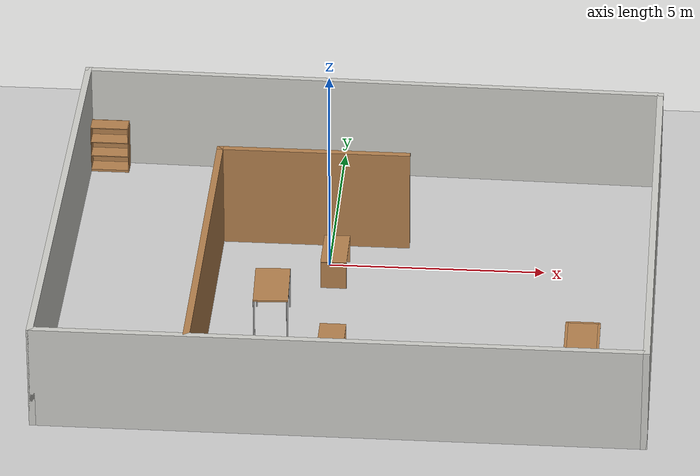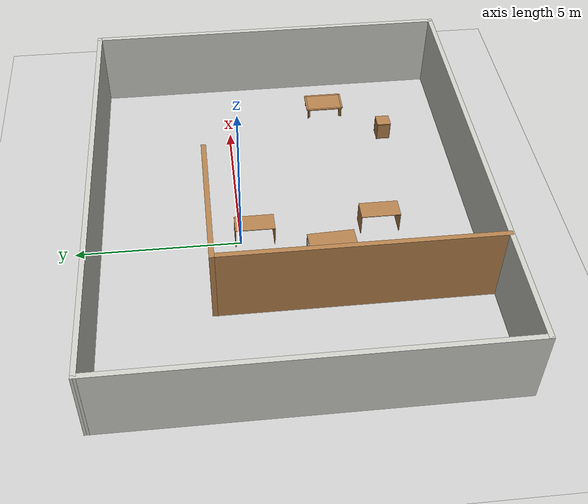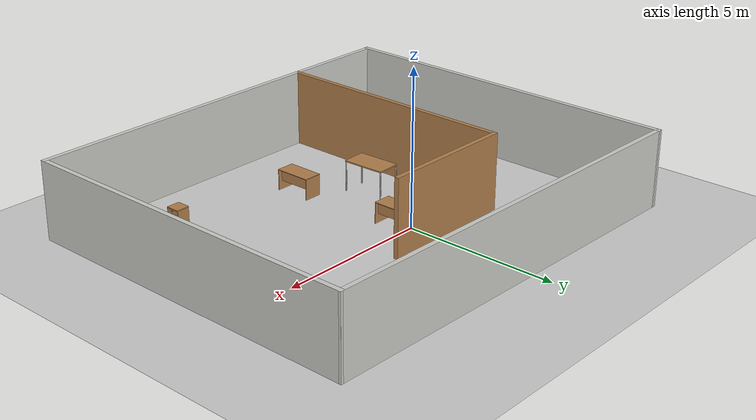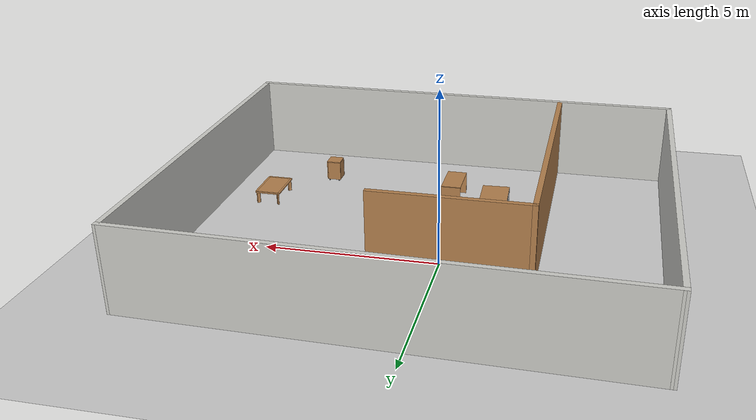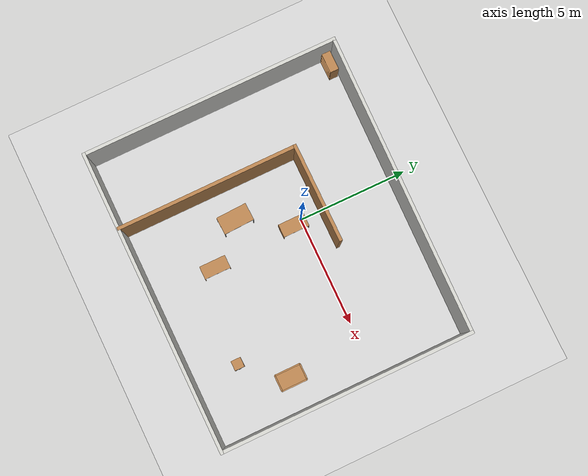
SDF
<sdf version="1.7">
 <world name="default">
  <light name="sun" type="directional">
   <pose>0 0 10 0 -0 0</pose>
   <diffuse>0.8 0.8 0.8 1</diffuse>
   <specular>0.1 0.1 0.1 1</specular>
   <attenuation>
    <range>1000</range>
    <constant>0.9</constant>
    <linear>0.01</linear>
    <quadratic>0.001</quadratic>
   </attenuation>
   <direction>-0.5 0.5 -1</direction>
   <spot><inner_angle>0</inner_angle><outer_angle>0</outer_angle><falloff>0</falloff></spot>
  </light>
  <model name="ground_plane">
   <static>1</static>
   <link name="link">
    <collision name="collision">
     <geometry><plane><normal>0 0 1</normal><size>100 100</size></plane></geometry>
     <surface><friction><ode><mu>100</mu><mu2>50</mu2></ode></friction></surface>
    </collision>
    <visual name="visual">
     <cast_shadows>0</cast_shadows>
     <geometry><plane><normal>0 0 1</normal><size>100 100</size></plane></geometry>
     <material>
      <script><uri>file://media/materials/scripts/gazebo.material</uri><name>Gazebo/Grey</name></script>
     </material>
    </visual>
   </link>
  </model>
  <gravity>0 0 -9.8</gravity>
  <magnetic_field>6e-06 2.3e-05 -4.2e-05</magnetic_field>
  <atmosphere type="adiabatic"/>
  <physics name="default_physics" default="0" type="ode">
   <max_step_size>0.001</max_step_size>
   <real_time_factor>1</real_time_factor>
   <real_time_update_rate>1000</real_time_update_rate>
  </physics>
  <scene><ambient>0.4 0.4 0.4 1</ambient><background>0.7 0.7 0.7 1</background><shadows>1</shadows></scene>
  <spherical_coordinates>
   <surface_model>EARTH_WGS84</surface_model>
   <latitude_deg>0</latitude_deg>
   <longitude_deg>0</longitude_deg>
   <elevation>0</elevation>
   <heading_deg>0</heading_deg>
  </spherical_coordinates>
  <model name="bookshelf">
   <static>1</static>
   <link name="link">
    <inertial><mass>1</mass></inertial>
    <collision name="back">
     <pose>0 0.005 0.6 0 -0 0</pose>
     <geometry><box><size>0.9 0.01 1.2</size></box></geometry>
    </collision>
    <visual name="visual1">
     <pose>0 0.005 0.6 0 -0 0</pose>
     <geometry><box><size>0.9 0.01 1.2</size></box></geometry>
     <material>
      <script><uri>file://media/materials/scripts/gazebo.material</uri><name>Gazebo/Wood</name></script>
     </material>
    </visual>
    <collision name="left_side">
     <pose>0.45 -0.195 0.6 0 -0 0</pose>
     <geometry><box><size>0.02 0.4 1.2</size></box></geometry>
    </collision>
    <visual name="visual2">
     <pose>0.45 -0.195 0.6 0 -0 0</pose>
     <geometry><box><size>0.02 0.4 1.2</size></box></geometry>
     <material>
      <script><uri>file://media/materials/scripts/gazebo.material</uri><name>Gazebo/Wood</name></script>
     </material>
    </visual>
    <collision name="right_side">
     <pose>-0.45 -0.195 0.6 0 -0 0</pose>
     <geometry><box><size>0.02 0.4 1.2</size></box></geometry>
    </collision>
    <visual name="visual3">
     <pose>-0.45 -0.195 0.6 0 -0 0</pose>
     <geometry><box><size>0.02 0.4 1.2</size></box></geometry>
     <material>
      <script><uri>file://media/materials/scripts/gazebo.material</uri><name>Gazebo/Wood</name></script>
     </material>
    </visual>
    <collision name="bottom">
     <pose>0 -0.195 0.03 0 -0 0</pose>
     <geometry><box><size>0.88 0.4 0.06</size></box></geometry>
    </collision>
    <visual name="visual4">
     <pose>0 -0.195 0.03 0 -0 0</pose>
     <geometry><box><size>0.88 0.4 0.06</size></box></geometry>
     <material>
      <script><uri>file://media/materials/scripts/gazebo.material</uri><name>Gazebo/Wood</name></script>
     </material>
    </visual>
    <collision name="top">
     <pose>0 -0.195 1.19 0 -0 0</pose>
     <geometry><box><size>0.88 0.4 0.02</size></box></geometry>
    </collision>
    <visual name="visual5">
     <pose>0 -0.195 1.19 0 -0 0</pose>
     <geometry><box><size>0.88 0.4 0.02</size></box></geometry>
     <material>
      <script><uri>file://media/materials/scripts/gazebo.material</uri><name>Gazebo/Wood</name></script>
     </material>
    </visual>
    <collision name="low_shelf">
     <pose>0 -0.195 0.43 0 -0 0</pose>
     <geometry><box><size>0.88 0.4 0.02</size></box></geometry>
    </collision>
    <visual name="visual6">
     <pose>0 -0.195 0.43 0 -0 0</pose>
     <geometry><box><size>0.88 0.4 0.02</size></box></geometry>
     <material>
      <script><uri>file://media/materials/scripts/gazebo.material</uri><name>Gazebo/Wood</name></script>
     </material>
    </visual>
    <collision name="high_shelf">
     <pose>0 -0.195 0.8 0 -0 0</pose>
     <geometry><box><size>0.88 0.4 0.02</size></box></geometry>
    </collision>
    <visual name="visual7">
     <pose>0 -0.195 0.8 0 -0 0</pose>
     <geometry><box><size>0.88 0.4 0.02</size></box></geometry>
     <material>
      <script><uri>file://media/materials/scripts/gazebo.material</uri><name>Gazebo/Wood</name></script>
     </material>
    </visual>
   </link>
   <pose>-5.57633 4.24678 0 0 -0 0</pose>
  </model>
  <model name="table">
   <static>0</static>
   <link name="link">
    <collision name="surface">
     <pose>0 0 1 0 -0 0</pose>
     <geometry><box><size>1.5 0.8 0.03</size></box></geometry>
     <surface><friction><ode><mu>0.6</mu><mu2>0.6</mu2></ode></friction></surface>
    </collision>
    <visual name="visual1">
     <pose>0 0 1 0 -0 0</pose>
     <geometry><box><size>1.4 0.8 0.04</size></box></geometry>
     <material>
      <script><uri>file://media/materials/scripts/gazebo.material</uri><name>Gazebo/Wood</name></script>
     </material>
    </visual>
    <collision name="front_left_leg">
     <pose>0.68 0.38 0.5 0 -0 0</pose>
     <geometry><cylinder><radius>0.02</radius><length>1</length></cylinder></geometry>
    </collision>
    <visual name="front_left_leg">
     <pose>0.68 0.38 0.5 0 -0 0</pose>
     <geometry><cylinder><radius>0.02</radius><length>1</length></cylinder></geometry>
     <material>
      <script><uri>file://media/materials/scripts/gazebo.material</uri><name>Gazebo/Grey</name></script>
     </material>
    </visual>
    <collision name="front_right_leg">
     <pose>0.68 -0.38 0.5 0 -0 0</pose>
     <geometry><cylinder><radius>0.02</radius><length>1</length></cylinder></geometry>
    </collision>
    <visual name="front_right_leg">
     <pose>0.68 -0.38 0.5 0 -0 0</pose>
     <geometry><cylinder><radius>0.02</radius><length>1</length></cylinder></geometry>
     <material>
      <script><uri>file://media/materials/scripts/gazebo.material</uri><name>Gazebo/Grey</name></script>
     </material>
    </visual>
    <collision name="back_right_leg">
     <pose>-0.68 -0.38 0.5 0 -0 0</pose>
     <geometry><cylinder><radius>0.02</radius><length>1</length></cylinder></geometry>
    </collision>
    <visual name="back_right_leg">
     <pose>-0.68 -0.38 0.5 0 -0 0</pose>
     <geometry><cylinder><radius>0.02</radius><length>1</length></cylinder></geometry>
     <material>
      <script><uri>file://media/materials/scripts/gazebo.material</uri><name>Gazebo/Grey</name></script>
     </material>
    </visual>
    <collision name="back_left_leg">
     <pose>-0.68 0.38 0.5 0 -0 0</pose>
     <geometry><cylinder><radius>0.02</radius><length>1</length></cylinder></geometry>
    </collision>
    <visual name="back_left_leg">
     <pose>-0.68 0.38 0.5 0 -0 0</pose>
     <geometry><cylinder><radius>0.02</radius><length>1</length></cylinder></geometry>
     <material>
      <script><uri>file://media/materials/scripts/gazebo.material</uri><name>Gazebo/Grey</name></script>
     </material>
    </visual>
    <inertial>
     <inertia><ixx>1</ixx><ixy>0</ixy><ixz>0</ixz><iyy>1</iyy><iyz>0</iyz><izz>1</izz></inertia>
     <mass>1</mass>
    </inertial>
   </link>
   <pose>-1.1349 -2.59455 -0 0 -0 1.61244</pose>
  </model>
  <model name="office_desk">
   <link name="link">
    <inertial>
     <mass>10</mass>
     <inertia><ixx>1</ixx><ixy>0</ixy><ixz>0</ixz><iyy>1</iyy><iyz>0</iyz><izz>1</izz></inertia>
    </inertial>
    <visual name="top_board">
     <pose>-0.3 0.6 0.69 0 -0 0</pose>
     <geometry><box><size>0.6 1.2 0.02</size></box></geometry>
     <material>
      <script>
       <uri>model://base_materials/wood/scripts/wood.material</uri>
       <name>base_materials/dark_wood</name>
      </script>
     </material>
    </visual>
    <collision name="collision_top_board">
     <pose>-0.3 0.6 0.69 0 -0 0</pose>
     <geometry><box><size>0.6 1.2 0.02</size></box></geometry>
    </collision>
    <visual name="left_board">
     <pose>-0.3 0.01 0.34 0 -0 0</pose>
     <geometry><box><size>0.6 0.02 0.68</size></box></geometry>
     <material>
      <script>
       <uri>model://base_materials/wood/scripts/wood.material</uri>
       <name>base_materials/dark_wood</name>
      </script>
     </material>
    </visual>
    <collision name="collision_left_board">
     <pose>-0.3 0.01 0.34 0 -0 0</pose>
     <geometry><box><size>0.6 0.02 0.68</size></box></geometry>
    </collision>
    <visual name="right_board">
     <pose>-0.3 1.19 0.34 0 -0 0</pose>
     <geometry><box><size>0.6 0.02 0.68</size></box></geometry>
     <material>
      <script>
       <uri>model://base_materials/wood/scripts/wood.material</uri>
       <name>base_materials/dark_wood</name>
      </script>
     </material>
    </visual>
    <collision name="collision_right_board">
     <pose>-0.3 1.19 0.34 0 -0 0</pose>
     <geometry><box><size>0.6 0.02 0.68</size></box></geometry>
    </collision>
    <visual name="center_board">
     <pose>-0.14 0.6 0.49 0 -0 0</pose>
     <geometry><box><size>0.02 1.16 0.4</size></box></geometry>
     <material>
      <script>
       <uri>model://base_materials/wood/scripts/wood.material</uri>
       <name>base_materials/dark_wood</name>
      </script>
     </material>
    </visual>
    <collision name="ollision_center_board">
     <pose>-0.14 0.6 0.49 0 -0 0</pose>
     <geometry><box><size>0.02 1.16 0.4</size></box></geometry>
    </collision>
    <velocity_decay><linear>0</linear><angular>0</angular></velocity_decay>
   </link>
   <static>1</static>
   <pose>0.456542 -1.02041 0 0 -0 0</pose>
  </model>
  <model name="WallTotal">
   <pose>0.707911 2.07313 0 0 -0 0</pose>
   <link name="Wall_33">
    <collision name="Wall_33_Collision">
     <geometry><box><size>11.75 0.15 2.5</size></box></geometry>
     <pose>0 0 1.25 0 -0 0</pose>
    </collision>
    <visual name="Wall_33_Visual">
     <pose>0 0 1.25 0 -0 0</pose>
     <geometry><box><size>11.75 0.15 2.5</size></box></geometry>
     <material>
      <script><uri>file://media/materials/scripts/gazebo.material</uri><name>Gazebo/CeilingTiled</name></script>
      <ambient>1 1 1 1</ambient>
     </material>
     <meta><layer>0</layer></meta>
    </visual>
    <pose>-6.8 -3.46494 0 0 -0 -1.5708</pose>
   </link>
   <link name="Wall_34">
    <collision name="Wall_34_Collision">
     <geometry><box><size>13.75 0.15 2.5</size></box></geometry>
     <pose>0 0 1.25 0 -0 0</pose>
    </collision>
    <visual name="Wall_34_Visual">
     <pose>0 0 1.25 0 -0 0</pose>
     <geometry><box><size>13.75 0.15 2.5</size></box></geometry>
     <material>
      <script><uri>file://media/materials/scripts/gazebo.material</uri><name>Gazebo/CeilingTiled</name></script>
      <ambient>1 1 1 1</ambient>
     </material>
     <meta><layer>0</layer></meta>
    </visual>
    <pose>0 -9.26494 0 0 -0 0</pose>
   </link>
   <link name="Wall_35">
    <collision name="Wall_35_Collision">
     <geometry><box><size>11.5 0.15 2.5</size></box></geometry>
     <pose>0 0 1.25 0 -0 0</pose>
    </collision>
    <visual name="Wall_35_Visual">
     <pose>0 0 1.25 0 -0 0</pose>
     <geometry><box><size>11.5 0.15 2.5</size></box></geometry>
     <material>
      <script><uri>file://media/materials/scripts/gazebo.material</uri><name>Gazebo/CeilingTiled</name></script>
      <ambient>1 1 1 1</ambient>
     </material>
     <meta><layer>0</layer></meta>
    </visual>
    <pose>6.8 -3.58994 0 0 -0 1.5708</pose>
   </link>
   <link name="Wall_36">
    <collision name="Wall_36_Collision">
     <geometry><box><size>13.7523 0.15 2.5</size></box></geometry>
     <pose>0 0 1.25 0 -0 0</pose>
    </collision>
    <visual name="Wall_36_Visual">
     <pose>0 0 1.25 0 -0 0</pose>
     <geometry><box><size>13.7523 0.15 2.5</size></box></geometry>
     <material>
      <script><uri>file://media/materials/scripts/gazebo.material</uri><name>Gazebo/CeilingTiled</name></script>
      <ambient>1 1 1 1</ambient>
     </material>
     <meta><layer>0</layer></meta>
    </visual>
    <pose>0 2.21006 0 0 -0 3.12321</pose>
   </link>
   <link name="Wall_38">
    <collision name="Wall_38_Collision">
     <geometry><box><size>8.25 0.15 2.5</size></box></geometry>
     <pose>0 0 1.25 0 -0 0</pose>
    </collision>
    <visual name="Wall_38_Visual">
     <pose>0 0 1.25 0 -0 0</pose>
     <geometry><box><size>8.25 0.15 2.5</size></box></geometry>
     <material>
      <script><uri>file://media/materials/scripts/gazebo.material</uri><name>Gazebo/Wood</name></script>
      <ambient>1 1 1 1</ambient>
     </material>
     <meta><layer>0</layer></meta>
    </visual>
    <pose>-3.33487 -5.18006 0 0 -0 -1.5708</pose>
   </link>
   <link name="Wall_40">
    <collision name="Wall_40_Collision">
     <geometry><box><size>4.5 0.15 2.5</size></box></geometry>
     <pose>0 0 1.25 0 -0 0</pose>
    </collision>
    <visual name="Wall_40_Visual">
     <pose>0 0 1.25 0 -0 0</pose>
     <geometry><box><size>4.5 0.15 2.5</size></box></geometry>
     <material>
      <script><uri>file://media/materials/scripts/gazebo.material</uri><name>Gazebo/Wood</name></script>
      <ambient>1 1 1 1</ambient>
     </material>
     <meta><layer>0</layer></meta>
    </visual>
    <pose>-1.15987 -1.13006 0 0 -0 0</pose>
   </link>
   <static>1</static>
  </model>
  <model name="office_desk_clone">
   <link name="link">
    <inertial>
     <mass>10</mass>
     <inertia><ixx>1</ixx><ixy>0</ixy><ixz>0</ixz><iyy>1</iyy><iyz>0</iyz><izz>1</izz></inertia>
    </inertial>
    <visual name="top_board">
     <pose>-0.3 0.6 0.69 0 -0 0</pose>
     <geometry><box><size>0.6 1.2 0.02</size></box></geometry>
     <material>
      <script>
       <uri>model://base_materials/wood/scripts/wood.material</uri>
       <name>base_materials/dark_wood</name>
      </script>
     </material>
    </visual>
    <collision name="collision_top_board">
     <pose>-0.3 0.6 0.69 0 -0 0</pose>
     <geometry><box><size>0.6 1.2 0.02</size></box></geometry>
    </collision>
    <visual name="left_board">
     <pose>-0.3 0.01 0.34 0 -0 0</pose>
     <geometry><box><size>0.6 0.02 0.68</size></box></geometry>
     <material>
      <script>
       <uri>model://base_materials/wood/scripts/wood.material</uri>
       <name>base_materials/dark_wood</name>
      </script>
     </material>
    </visual>
    <collision name="collision_left_board">
     <pose>-0.3 0.01 0.34 0 -0 0</pose>
     <geometry><box><size>0.6 0.02 0.68</size></box></geometry>
    </collision>
    <visual name="right_board">
     <pose>-0.3 1.19 0.34 0 -0 0</pose>
     <geometry><box><size>0.6 0.02 0.68</size></box></geometry>
     <material>
      <script>
       <uri>model://base_materials/wood/scripts/wood.material</uri>
       <name>base_materials/dark_wood</name>
      </script>
     </material>
    </visual>
    <collision name="collision_right_board">
     <pose>-0.3 1.19 0.34 0 -0 0</pose>
     <geometry><box><size>0.6 0.02 0.68</size></box></geometry>
    </collision>
    <visual name="center_board">
     <pose>-0.14 0.6 0.49 0 -0 0</pose>
     <geometry><box><size>0.02 1.16 0.4</size></box></geometry>
     <material>
      <script>
       <uri>model://base_materials/wood/scripts/wood.material</uri>
       <name>base_materials/dark_wood</name>
      </script>
     </material>
    </visual>
    <collision name="ollision_center_board">
     <pose>-0.14 0.6 0.49 0 -0 0</pose>
     <geometry><box><size>0.02 1.16 0.4</size></box></geometry>
    </collision>
    <velocity_decay><linear>0</linear><angular>0</angular></velocity_decay>
   </link>
   <static>1</static>
   <pose>0.649163 -4.86247 0 0 -0 0</pose>
  </model>
  <model name="wagon">
   <link name="link">
    <inertial>
     <mass>10</mass>
     <inertia><ixx>1</ixx><ixy>0</ixy><ixz>0</ixz><iyy>1</iyy><iyz>0</iyz><izz>1</izz></inertia>
    </inertial>
    <visual name="left_board">
     <pose>-0.2325 0.01 0.345 0 -0 0</pose>
     <geometry><box><size>0.415 0.02 0.59</size></box></geometry>
     <material>
      <script><uri>model://base_materials/wood/scripts/wood.material</uri><name>base_materials/wood</name></script>
     </material>
    </visual>
    <collision name="collision_left_board">
     <pose>-0.2325 0.01 0.345 0 -0 0</pose>
     <geometry><box><size>0.415 0.02 0.59</size></box></geometry>
    </collision>
    <visual name="right_board">
     <pose>-0.2325 0.4325 0.345 0 -0 0</pose>
     <geometry><box><size>0.415 0.02 0.59</size></box></geometry>
     <material>
      <script><uri>model://base_materials/wood/scripts/wood.material</uri><name>base_materials/wood</name></script>
     </material>
    </visual>
    <collision name="collision_right_board">
     <pose>-0.2325 0.4325 0.345 0 -0 0</pose>
     <geometry><box><size>0.415 0.02 0.59</size></box></geometry>
    </collision>
    <visual name="top_board">
     <pose>-0.22 0.2225 0.655 0 -0 0</pose>
     <geometry><box><size>0.44 0.445 0.03</size></box></geometry>
     <material>
      <script><uri>model://base_materials/wood/scripts/wood.material</uri><name>base_materials/wood</name></script>
     </material>
    </visual>
    <collision name="collision_top_board">
     <pose>-0.22 0.2225 0.655 0 -0 0</pose>
     <geometry><box><size>0.44 0.445 0.03</size></box></geometry>
    </collision>
    <visual name="back_board">
     <pose>-0.425 0.2225 0.345 0 -0 0</pose>
     <geometry><box><size>0.02 0.405 0.59</size></box></geometry>
     <material>
      <script><uri>model://base_materials/wood/scripts/wood.material</uri><name>base_materials/wood</name></script>
     </material>
    </visual>
    <collision name="collision_back_board">
     <pose>-0.425 0.2225 0.345 0 -0 0</pose>
     <geometry><box><size>0.02 0.405 0.59</size></box></geometry>
    </collision>
    <visual name="bottom_board">
     <pose>-0.2325 0.2225 0.06 0 -0 0</pose>
     <geometry><box><size>0.415 0.405 0.02</size></box></geometry>
     <material>
      <script><uri>model://base_materials/wood/scripts/wood.material</uri><name>base_materials/wood</name></script>
     </material>
    </visual>
    <collision name="collision_bottom_board">
     <pose>-0.2325 0.2225 0.06 0 -0 0</pose>
     <geometry><box><size>0.415 0.405 0.02</size></box></geometry>
    </collision>
    <visual name="1st_drawer">
     <pose>-0.0125 0.2225 0.57 0 -0 0</pose>
     <geometry><box><size>0.025 0.445 0.14</size></box></geometry>
     <material>
      <script><uri>model://base_materials/wood/scripts/wood.material</uri><name>base_materials/wood</name></script>
     </material>
    </visual>
    <collision name="collision_1st_drawer">
     <pose>-0.0125 0.2225 0.57 0 -0 0</pose>
     <geometry><box><size>0.025 0.445 0.14</size></box></geometry>
    </collision>
    <visual name="1st_drawer_handle_l1">
     <pose>0.0115 0.1895 0.6 3.14159 1.57079 3.14159</pose>
     <geometry><cylinder><radius>0.007</radius><length>0.023</length></cylinder></geometry>
     <material>
      <ambient>0.18431 0.3098 0.3098 1</ambient>
      <diffuse>0.18431 0.3098 0.3098 1</diffuse>
      <specular>0.1 0.1 0.1 1</specular>
     </material>
    </visual>
    <collision name="collision_1st_drawer_handle_l1">
     <pose>0.0115 0.1895 0.6 3.14159 1.57079 3.14159</pose>
     <geometry><cylinder><radius>0.007</radius><length>0.023</length></cylinder></geometry>
    </collision>
    <visual name="1st_drawer_handle_l2">
     <pose>0.023 0.1895 0.6 0 -0 0</pose>
     <geometry><sphere><radius>0.007</radius></sphere></geometry>
     <material>
      <ambient>0.18431 0.3098 0.3098 1</ambient>
      <diffuse>0.18431 0.3098 0.3098 1</diffuse>
      <specular>0.1 0.1 0.1 1</specular>
     </material>
    </visual>
    <collision name="collision_1st_drawer_handle_l2">
     <pose>0.023 0.1895 0.6 0 -0 0</pose>
     <geometry><sphere><radius>0.007</radius></sphere></geometry>
    </collision>
    <visual name="1st_drawer_handle_r1">
     <pose>0.0115 0.2555 0.6 3.14159 1.57079 3.14159</pose>
     <geometry><cylinder><radius>0.007</radius><length>0.023</length></cylinder></geometry>
     <material>
      <ambient>0.18431 0.3098 0.3098 1</ambient>
      <diffuse>0.18431 0.3098 0.3098 1</diffuse>
      <specular>0.1 0.1 0.1 1</specular>
     </material>
    </visual>
    <collision name="collision_1st_drawer_handle_r1">
     <pose>0.0115 0.2555 0.6 3.14159 1.57079 3.14159</pose>
     <geometry><cylinder><radius>0.007</radius><length>0.023</length></cylinder></geometry>
    </collision>
    <visual name="1st_drawer_handle_r2">
     <pose>0.023 0.2555 0.6 0 -0 0</pose>
     <geometry><sphere><radius>0.007</radius></sphere></geometry>
     <material>
      <ambient>0.18431 0.3098 0.3098 1</ambient>
      <diffuse>0.18431 0.3098 0.3098 1</diffuse>
      <specular>0.1 0.1 0.1 1</specular>
     </material>
    </visual>
    <collision name="collision_1st_drawer_handle_r2">
     <pose>0.023 0.2555 0.6 0 -0 0</pose>
     <geometry><sphere><radius>0.007</radius></sphere></geometry>
    </collision>
    <visual name="1st_drawer_handle_center">
     <pose>0.023 0.2225 0.6 1.5708 -0 0</pose>
     <geometry><cylinder><radius>0.007</radius><length>0.066</length></cylinder></geometry>
     <material>
      <ambient>0.18431 0.3098 0.3098 1</ambient>
      <diffuse>0.18431 0.3098 0.3098 1</diffuse>
      <specular>0.1 0.1 0.1 1</specular>
     </material>
    </visual>
    <collision name="collision_1st_drawer_handle_center">
     <pose>0.023 0.2225 0.6 1.5708 -0 0</pose>
     <geometry><cylinder><radius>0.007</radius><length>0.066</length></cylinder></geometry>
    </collision>
    <visual name="2nd_drawer">
     <pose>-0.0125 0.2225 0.275 0 -0 0</pose>
     <geometry><box><size>0.025 0.445 0.45</size></box></geometry>
     <material>
      <script><uri>model://base_materials/wood/scripts/wood.material</uri><name>base_materials/wood</name></script>
     </material>
    </visual>
    <collision name="collision_2nd_drawer">
     <pose>-0.0125 0.2225 0.275 0 -0 0</pose>
     <geometry><box><size>0.025 0.445 0.45</size></box></geometry>
    </collision>
    <visual name="2nd_drawer_handle_top1">
     <pose>0.0115 0.04 0.47 3.14159 1.57079 3.14159</pose>
     <geometry><cylinder><radius>0.007</radius><length>0.023</length></cylinder></geometry>
     <material>
      <ambient>0.18431 0.3098 0.3098 1</ambient>
      <diffuse>0.18431 0.3098 0.3098 1</diffuse>
      <specular>0.1 0.1 0.1 1</specular>
     </material>
    </visual>
    <collision name="collision_2nd_drawer_handle_top1">
     <pose>0.0115 0.04 0.47 3.14159 1.57079 3.14159</pose>
     <geometry><cylinder><radius>0.007</radius><length>0.023</length></cylinder></geometry>
    </collision>
    <visual name="2nd_drawer_handle_top2">
     <pose>0.023 0.04 0.47 0 -0 0</pose>
     <geometry><sphere><radius>0.007</radius></sphere></geometry>
     <material>
      <ambient>0.18431 0.3098 0.3098 1</ambient>
      <diffuse>0.18431 0.3098 0.3098 1</diffuse>
      <specular>0.1 0.1 0.1 1</specular>
     </material>
    </visual>
    <collision name="2nd_drawer_handle_top2">
     <pose>0.023 0.04 0.47 0 -0 0</pose>
     <geometry><sphere><radius>0.007</radius></sphere></geometry>
    </collision>
    <visual name="2nd_drawer_handle_bottom1">
     <pose>0.0115 0.04 0.404 3.14159 1.57079 3.14159</pose>
     <geometry><cylinder><radius>0.007</radius><length>0.023</length></cylinder></geometry>
     <material>
      <ambient>0.18431 0.3098 0.3098 1</ambient>
      <diffuse>0.18431 0.3098 0.3098 1</diffuse>
      <specular>0.1 0.1 0.1 1</specular>
     </material>
    </visual>
    <collision name="collision_2nd_drawer_handle_bottom1">
     <pose>0.0115 0.04 0.404 3.14159 1.57079 3.14159</pose>
     <geometry><cylinder><radius>0.007</radius><length>0.023</length></cylinder></geometry>
    </collision>
    <visual name="2nd_drawer_handle_bottom2">
     <pose>0.023 0.04 0.404 0 -0 0</pose>
     <geometry><sphere><radius>0.007</radius></sphere></geometry>
     <material>
      <ambient>0.18431 0.3098 0.3098 1</ambient>
      <diffuse>0.18431 0.3098 0.3098 1</diffuse>
      <specular>0.1 0.1 0.1 1</specular>
     </material>
    </visual>
    <collision name="2nd_drawer_handle_bottom2">
     <pose>0.023 0.04 0.404 0 -0 0</pose>
     <geometry><sphere><radius>0.007</radius></sphere></geometry>
    </collision>
    <visual name="2nd_drawer_handle_center">
     <pose>0.023 0.04 0.437 0 -0 0</pose>
     <geometry><cylinder><radius>0.007</radius><length>0.066</length></cylinder></geometry>
     <material>
      <ambient>0.18431 0.3098 0.3098 1</ambient>
      <diffuse>0.18431 0.3098 0.3098 1</diffuse>
      <specular>0.1 0.1 0.1 1</specular>
     </material>
    </visual>
    <collision name="collision_2nd_drawer_handle_center">
     <pose>0.023 0.04 0.437 0 -0 0</pose>
     <geometry><cylinder><radius>0.007</radius><length>0.066</length></cylinder></geometry>
    </collision>
    <visual name="left_front_caster">
     <pose>-0.07 0.025 0.025 3.14159 1.57079 3.14159</pose>
     <geometry><cylinder><radius>0.025</radius><length>0.035</length></cylinder></geometry>
     <material><script><name>Gazebo/Black</name><uri>__default__</uri></script></material>
    </visual>
    <collision name="collision_left_front_caster">
     <pose>-0.07 0.025 0.025 3.14159 1.57079 3.14159</pose>
     <geometry><cylinder><radius>0.025</radius><length>0.035</length></cylinder></geometry>
    </collision>
    <visual name="right_front_caster">
     <pose>-0.07 0.42 0.025 3.14159 1.57079 3.14159</pose>
     <geometry><cylinder><radius>0.025</radius><length>0.035</length></cylinder></geometry>
     <material><script><name>Gazebo/Black</name><uri>__default__</uri></script></material>
    </visual>
    <collision name="collision_right_front_caster">
     <pose>-0.07 0.42 0.025 3.14159 1.57079 3.14159</pose>
     <geometry><cylinder><radius>0.025</radius><length>0.035</length></cylinder></geometry>
    </collision>
    <visual name="left_back_caster">
     <pose>-0.39 0.025 0.025 3.14159 1.57079 3.14159</pose>
     <geometry><cylinder><radius>0.025</radius><length>0.035</length></cylinder></geometry>
     <material><script><name>Gazebo/Black</name><uri>__default__</uri></script></material>
    </visual>
    <collision name="collision_left_back_caster">
     <pose>-0.39 0.025 0.025 3.14159 1.57079 3.14159</pose>
     <geometry><cylinder><radius>0.025</radius><length>0.035</length></cylinder></geometry>
    </collision>
    <visual name="right_back_caster">
     <pose>-0.39 0.42 0.025 3.14159 1.57079 3.14159</pose>
     <geometry><cylinder><radius>0.025</radius><length>0.035</length></cylinder></geometry>
     <material><script><name>Gazebo/Black</name><uri>__default__</uri></script></material>
    </visual>
    <collision name="collision_right_back_caster">
     <pose>-0.39 0.42 0.025 3.14159 1.57079 3.14159</pose>
     <geometry><cylinder><radius>0.025</radius><length>0.035</length></cylinder></geometry>
    </collision>
    <velocity_decay><linear>0</linear><angular>0</angular></velocity_decay>
   </link>
   <static>1</static>
   <pose>4.71983 -5.35923 0 0 -0 0</pose>
  </model>
  <model name="kitchen_lowtable">
   <link name="link">
    <inertial>
     <mass>10</mass>
     <inertia><ixx>1</ixx><ixy>0</ixy><ixz>0</ixz><iyy>1</iyy><iyz>0</iyz><izz>1</izz></inertia>
    </inertial>
    <visual name="center_board">
     <pose>0 0 0.38 0 -0 0</pose>
     <geometry><box><size>0.68 1.13 0.04</size></box></geometry>
     <material>
      <script><uri>model://base_materials/wood/scripts/wood.material</uri><name>base_materials/wood</name></script>
     </material>
    </visual>
    <collision name="collision_center_board">
     <pose>0 0 0.38 0 -0 0</pose>
     <geometry><box><size>0.68 1.13 0.04</size></box></geometry>
    </collision>
    <visual name="front_board">
     <pose>0.37 0 0.38 0 -0 0</pose>
     <geometry><box><size>0.06 1.13 0.04</size></box></geometry>
     <material>
      <script><uri>model://base_materials/wood/scripts/wood.material</uri><name>base_materials/wood</name></script>
     </material>
    </visual>
    <collision name="collision_front_board">
     <pose>0.37 0 0.38 0 -0 0</pose>
     <geometry><box><size>0.06 1.13 0.04</size></box></geometry>
    </collision>
    <visual name="back_board">
     <pose>-0.37 0 0.38 0 -0 0</pose>
     <geometry><box><size>0.06 1.13 0.04</size></box></geometry>
     <material>
      <script><uri>model://base_materials/wood/scripts/wood.material</uri><name>base_materials/wood</name></script>
     </material>
    </visual>
    <collision name="collision_back_board">
     <pose>-0.37 0 0.38 0 -0 0</pose>
     <geometry><box><size>0.06 1.13 0.04</size></box></geometry>
    </collision>
    <visual name="right_board">
     <pose>0 0.595 0.38 0 -0 0</pose>
     <geometry><box><size>0.68 0.06 0.04</size></box></geometry>
     <material>
      <script><uri>model://base_materials/wood/scripts/wood.material</uri><name>base_materials/wood</name></script>
     </material>
    </visual>
    <collision name="collision_right_board">
     <pose>0 0.595 0.38 0 -0 0</pose>
     <geometry><box><size>0.68 0.06 0.04</size></box></geometry>
    </collision>
    <visual name="left_board">
     <pose>0 -0.595 0.38 0 -0 0</pose>
     <geometry><box><size>0.68 0.06 0.04</size></box></geometry>
     <material>
      <script><uri>model://base_materials/wood/scripts/wood.material</uri><name>base_materials/wood</name></script>
     </material>
    </visual>
    <collision name="collision_left_board">
     <pose>0 -0.595 0.38 0 -0 0</pose>
     <geometry><box><size>0.68 0.06 0.04</size></box></geometry>
    </collision>
    <visual name="front_right_corner_board">
     <pose>0.34 0.565 0.38 0 -0 0</pose>
     <geometry><cylinder><radius>0.06</radius><length>0.039</length></cylinder></geometry>
     <material>
      <script><uri>model://base_materials/wood/scripts/wood.material</uri><name>base_materials/wood</name></script>
     </material>
    </visual>
    <collision name="collision_front_right_corner_board">
     <pose>0.34 0.565 0.38 0 -0 0</pose>
     <geometry><cylinder><radius>0.06</radius><length>0.039</length></cylinder></geometry>
    </collision>
    <visual name="front_left_corner_board">
     <pose>0.34 -0.565 0.38 0 -0 0</pose>
     <geometry><cylinder><radius>0.06</radius><length>0.039</length></cylinder></geometry>
     <material>
      <script><uri>model://base_materials/wood/scripts/wood.material</uri><name>base_materials/wood</name></script>
     </material>
    </visual>
    <collision name="collision_front_left_corner_board">
     <pose>0.34 -0.565 0.38 0 -0 0</pose>
     <geometry><cylinder><radius>0.06</radius><length>0.039</length></cylinder></geometry>
    </collision>
    <visual name="front_back_right_corner_board">
     <pose>-0.34 0.565 0.38 0 -0 0</pose>
     <geometry><cylinder><radius>0.06</radius><length>0.039</length></cylinder></geometry>
     <material>
      <script><uri>model://base_materials/wood/scripts/wood.material</uri><name>base_materials/wood</name></script>
     </material>
    </visual>
    <collision name="collision_back_right_corner_board">
     <pose>-0.34 0.565 0.38 0 -0 0</pose>
     <geometry><cylinder><radius>0.06</radius><length>0.039</length></cylinder></geometry>
    </collision>
    <visual name="front_back_left_corner_board">
     <pose>-0.34 -0.565 0.38 0 -0 0</pose>
     <geometry><cylinder><radius>0.06</radius><length>0.039</length></cylinder></geometry>
     <material>
      <script><uri>model://base_materials/wood/scripts/wood.material</uri><name>base_materials/wood</name></script>
     </material>
    </visual>
    <collision name="collision_back_left_corner_board">
     <pose>-0.34 -0.565 0.38 0 -0 0</pose>
     <geometry><cylinder><radius>0.06</radius><length>0.039</length></cylinder></geometry>
    </collision>
    <visual name="front_left_corner_frame1">
     <pose>0.345858 -0.57086 0.18 0 -0 0</pose>
     <geometry><cylinder><radius>0.02</radius><length>0.36</length></cylinder></geometry>
     <material>
      <script><uri>model://base_materials/wood/scripts/wood.material</uri><name>base_materials/wood</name></script>
     </material>
    </visual>
    <collision name="collision_front_left_corner_frame1">
     <pose>0.345858 -0.57086 0.18 0 -0 0</pose>
     <geometry><cylinder><radius>0.02</radius><length>0.36</length></cylinder></geometry>
    </collision>
    <visual name="front_left_corner_frame2">
     <pose>0.317574 -0.54257 0.18 0 -0 0.7854</pose>
     <geometry><box><size>0.04 0.08 0.36</size></box></geometry>
     <material>
      <script><uri>model://base_materials/wood/scripts/wood.material</uri><name>base_materials/wood</name></script>
     </material>
    </visual>
    <collision name="collision_front_left_corner_frame2">
     <pose>0.317574 -0.54257 0.18 0 -0 0.7854</pose>
     <geometry><box><size>0.04 0.08 0.36</size></box></geometry>
    </collision>
    <visual name="front_left_corner_frame3">
     <pose>0.289289 -0.51429 0.18 0 -0 0</pose>
     <geometry><cylinder><radius>0.02</radius><length>0.36</length></cylinder></geometry>
     <material>
      <script><uri>model://base_materials/wood/scripts/wood.material</uri><name>base_materials/wood</name></script>
     </material>
    </visual>
    <collision name="collision_front_left_corner_frame3">
     <pose>0.289289 -0.51429 0.18 0 -0 0</pose>
     <geometry><cylinder><radius>0.02</radius><length>0.36</length></cylinder></geometry>
    </collision>
    <visual name="front_right_corner_frame1">
     <pose>0.345858 0.57086 0.18 0 -0 0</pose>
     <geometry><cylinder><radius>0.02</radius><length>0.36</length></cylinder></geometry>
     <material>
      <script><uri>model://base_materials/wood/scripts/wood.material</uri><name>base_materials/wood</name></script>
     </material>
    </visual>
    <collision name="collision_front_right_corner_frame1">
     <pose>0.345858 0.57086 0.18 0 -0 0</pose>
     <geometry><cylinder><radius>0.02</radius><length>0.36</length></cylinder></geometry>
    </collision>
    <visual name="front_right_corner_frame2">
     <pose>0.317574 0.54257 0.18 0 0 -0.7854</pose>
     <geometry><box><size>0.04 0.08 0.36</size></box></geometry>
     <material>
      <script><uri>model://base_materials/wood/scripts/wood.material</uri><name>base_materials/wood</name></script>
     </material>
    </visual>
    <collision name="collision_front_right_corner_frame2">
     <pose>0.317574 0.54257 0.18 0 0 -0.7854</pose>
     <geometry><box><size>0.04 0.08 0.36</size></box></geometry>
    </collision>
    <visual name="front_right_corner_frame3">
     <pose>0.289289 0.51429 0.18 0 -0 0</pose>
     <geometry><cylinder><radius>0.02</radius><length>0.36</length></cylinder></geometry>
     <material>
      <script><uri>model://base_materials/wood/scripts/wood.material</uri><name>base_materials/wood</name></script>
     </material>
    </visual>
    <collision name="collision_front_right_corner_frame3">
     <pose>0.289289 0.51429 0.18 0 -0 0</pose>
     <geometry><cylinder><radius>0.02</radius><length>0.36</length></cylinder></geometry>
    </collision>
    <visual name="back_left_corner_frame1">
     <pose>-0.345858 -0.57086 0.18 0 -0 0</pose>
     <geometry><cylinder><radius>0.02</radius><length>0.36</length></cylinder></geometry>
     <material>
      <script><uri>model://base_materials/wood/scripts/wood.material</uri><name>base_materials/wood</name></script>
     </material>
    </visual>
    <collision name="collision_back_left_corner_frame1">
     <pose>-0.345858 -0.57086 0.18 0 -0 0</pose>
     <geometry><cylinder><radius>0.02</radius><length>0.36</length></cylinder></geometry>
    </collision>
    <visual name="back_left_corner_frame2">
     <pose>-0.317574 -0.54257 0.18 0 0 -0.7854</pose>
     <geometry><box><size>0.04 0.08 0.36</size></box></geometry>
     <material>
      <script><uri>model://base_materials/wood/scripts/wood.material</uri><name>base_materials/wood</name></script>
     </material>
    </visual>
    <collision name="collision_back_left_corner_frame2">
     <pose>-0.317574 -0.54257 0.18 0 0 -0.7854</pose>
     <geometry><box><size>0.04 0.08 0.36</size></box></geometry>
    </collision>
    <visual name="back_left_corner_frame3">
     <pose>-0.289289 -0.51429 0.18 0 -0 0</pose>
     <geometry><cylinder><radius>0.02</radius><length>0.36</length></cylinder></geometry>
     <material>
      <script><uri>model://base_materials/wood/scripts/wood.material</uri><name>base_materials/wood</name></script>
     </material>
    </visual>
    <collision name="collision_back_left_corner_frame3">
     <pose>-0.289289 -0.51429 0.18 0 -0 0</pose>
     <geometry><cylinder><radius>0.02</radius><length>0.36</length></cylinder></geometry>
    </collision>
    <visual name="back_right_corner_frame1">
     <pose>-0.345858 0.57086 0.18 0 -0 0</pose>
     <geometry><cylinder><radius>0.02</radius><length>0.36</length></cylinder></geometry>
     <material>
      <script><uri>model://base_materials/wood/scripts/wood.material</uri><name>base_materials/wood</name></script>
     </material>
    </visual>
    <collision name="collision_back_right_corner_frame1">
     <pose>-0.345858 0.57086 0.18 0 -0 0</pose>
     <geometry><cylinder><radius>0.02</radius><length>0.36</length></cylinder></geometry>
    </collision>
    <visual name="back_right_corner_frame2">
     <pose>-0.317574 0.54257 0.18 0 -0 0.7854</pose>
     <geometry><box><size>0.04 0.08 0.36</size></box></geometry>
     <material>
      <script><uri>model://base_materials/wood/scripts/wood.material</uri><name>base_materials/wood</name></script>
     </material>
    </visual>
    <collision name="collision_back_right_corner_frame2">
     <pose>-0.317574 0.54257 0.18 0 -0 0.7854</pose>
     <geometry><box><size>0.04 0.08 0.36</size></box></geometry>
    </collision>
    <visual name="back_right_corner_frame3">
     <pose>-0.289289 0.51429 0.18 0 -0 0</pose>
     <geometry><cylinder><radius>0.02</radius><length>0.36</length></cylinder></geometry>
     <material>
      <script><uri>model://base_materials/wood/scripts/wood.material</uri><name>base_materials/wood</name></script>
     </material>
    </visual>
    <collision name="collision_back_right_corner_frame3">
     <pose>-0.289289 0.51429 0.18 0 -0 0</pose>
     <geometry><cylinder><radius>0.02</radius><length>0.36</length></cylinder></geometry>
    </collision>
    <velocity_decay><linear>0</linear><angular>0</angular></velocity_decay>
   </link>
   <static>1</static>
   <pose>5.99258 -3.33164 0 0 -0 0</pose>
  </model>
 </world>
</sdf>
